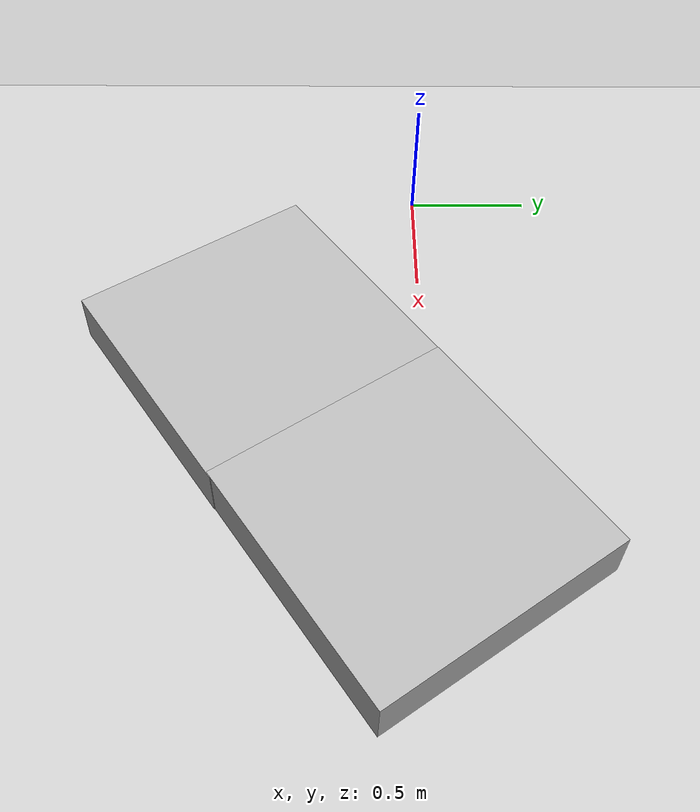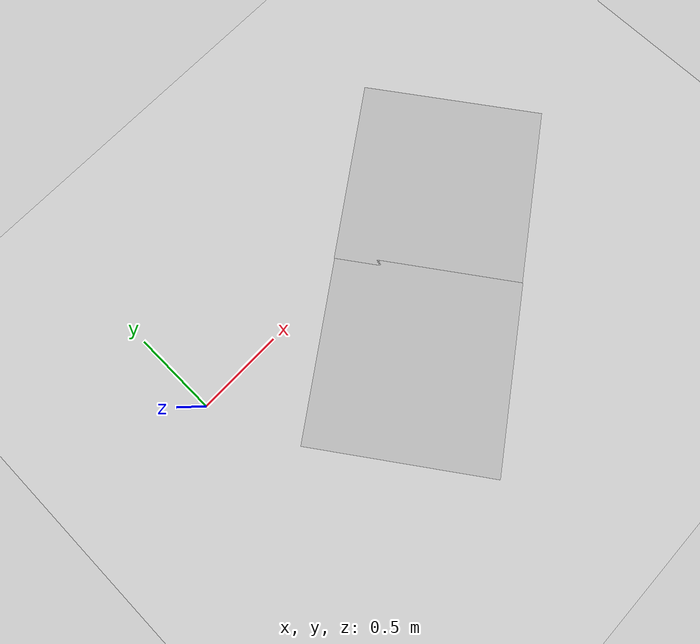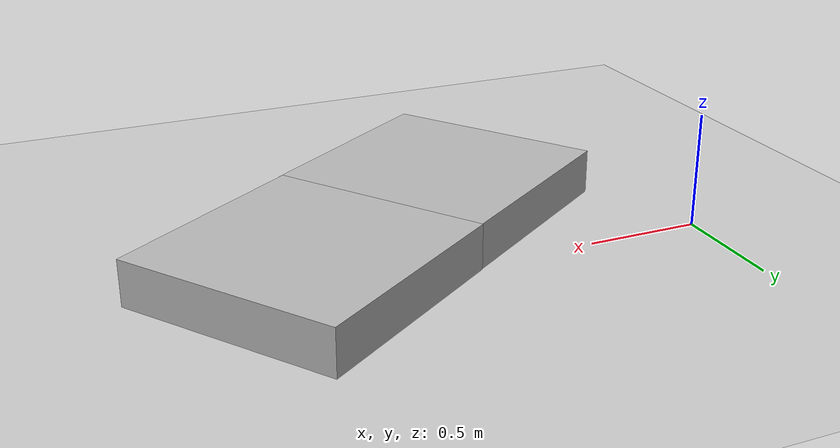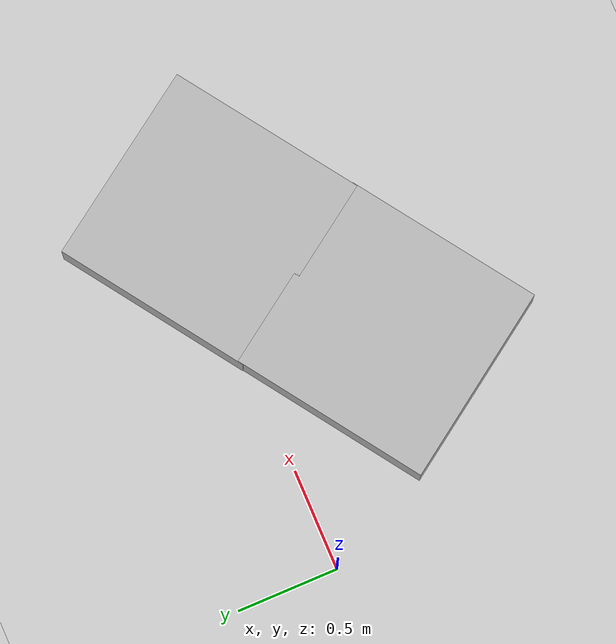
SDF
<sdf version="1.7">
 <world name="default">
  <light name="sun" type="directional">
   <pose>0 0 10 0 -0 0</pose>
   <diffuse>0.8 0.8 0.8 1</diffuse>
   <specular>0.2 0.2 0.2 1</specular>
   <attenuation>
    <range>1000</range>
    <constant>0.9</constant>
    <linear>0.01</linear>
    <quadratic>0.001</quadratic>
   </attenuation>
   <direction>-0.5 0.1 -0.9</direction>
   <spot><inner_angle>0</inner_angle><outer_angle>0</outer_angle><falloff>0</falloff></spot>
  </light>
  <model name="ground_plane">
   <static>1</static>
   <link name="link">
    <collision name="collision">
     <geometry><plane><normal>0 0 1</normal><size>100 100</size></plane></geometry>
     <surface>
      <contact><collide_bitmask>65535</collide_bitmask></contact>
      <friction><ode><mu>100</mu><mu2>50</mu2></ode></friction>
     </surface>
    </collision>
    <visual name="visual">
     <cast_shadows>0</cast_shadows>
     <geometry><plane><normal>0 0 1</normal><size>100 100</size></plane></geometry>
     <material>
      <script><uri>file://media/materials/scripts/gazebo.material</uri><name>Gazebo/Grey</name></script>
     </material>
    </visual>
   </link>
  </model>
  <gravity>0 0 -9.8</gravity>
  <magnetic_field>6e-06 2.3e-05 -4.2e-05</magnetic_field>
  <atmosphere type="adiabatic"/>
  <physics type="ode">
   <max_step_size>0.001</max_step_size>
   <real_time_factor>1</real_time_factor>
   <real_time_update_rate>1000</real_time_update_rate>
  </physics>
  <scene><ambient>0.4 0.4 0.4 1</ambient><background>0.7 0.7 0.7 1</background><shadows>1</shadows></scene>
  <spherical_coordinates>
   <surface_model>EARTH_WGS84</surface_model>
   <latitude_deg>0</latitude_deg>
   <longitude_deg>0</longitude_deg>
   <elevation>0</elevation>
   <heading_deg>0</heading_deg>
  </spherical_coordinates>
  <model name="20cmstep">
   <static>1</static>
   <pose>1.72535 -0.090311 0 0 0 -0.966739</pose>
   <link name="link">
    <collision name="collision">
     <geometry><mesh><scale>0.5 0.5 0.5</scale><uri>model://20cmstep/20cmstep.stl</uri></mesh></geometry>
     <surface><friction><ode><mu>100</mu><mu2>50</mu2></ode></friction></surface>
    </collision>
    <visual name="visual">
     <geometry><mesh><scale>0.5 0.5 0.5</scale><uri>model://20cmstep/20cmstep.stl</uri></mesh></geometry>
    </visual>
   </link>
  </model>
  <model name="20cmstep_clone">
   <static>1</static>
   <pose>0.925875 -0.644953 0 0 0 -0.967254</pose>
   <link name="link">
    <collision name="collision">
     <geometry><mesh><scale>0.5 0.5 0.5</scale><uri>model://20cmstep/20cmstep.stl</uri></mesh></geometry>
     <surface><friction><ode><mu>100</mu><mu2>50</mu2></ode></friction></surface>
    </collision>
    <visual name="visual">
     <geometry><mesh><scale>0.5 0.5 0.5</scale><uri>model://20cmstep/20cmstep.stl</uri></mesh></geometry>
    </visual>
   </link>
  </model>
 </world>
</sdf>
